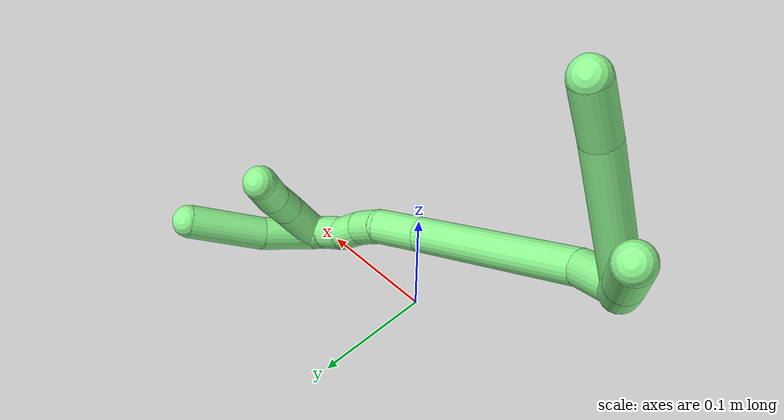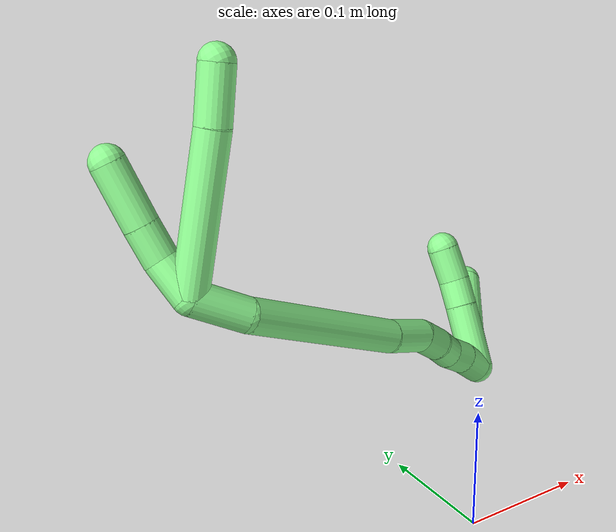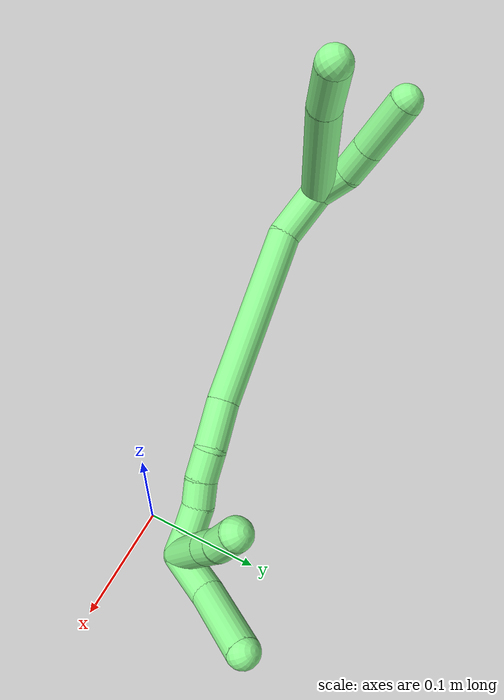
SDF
<sdf version="1.7">
 <world name="default">
  <model name="13">
   <static>0</static>
   <link name="13">
    <collision name="collision-cylinder-e_1_2_8">
     <pose>0.034438 -0.01445 0.039971 0.346882 0.680963 0.123981</pose>
     <geometry><cylinder><radius>0.0125</radius><length>0.109407</length></cylinder></geometry>
     <surface>
      <friction><ode><mu>1.16</mu><mu2>1.16</mu2><slip1>0</slip1><slip2>0</slip2></ode></friction>
      <contact><ode><kp>1e+06</kp><kd>1</kd><max_vel>0</max_vel><min_depth>0.001</min_depth></ode></contact>
     </surface>
    </collision>
    <visual name="visual-cylinder-e_1_2_8">
     <pose>0.034438 -0.01445 0.039971 0.346882 0.680963 0.123981</pose>
     <geometry><cylinder><radius>0.0125</radius><length>0.109407</length></cylinder></geometry>
     <material><ambient>0.564706 0.984314 0.572549 1</ambient></material>
    </visual>
    <collision name="collision-cylinder-e_2_8_6">
     <pose>0.08051 -0.033642 0.095884 0.28919 0.610364 0.091678</pose>
     <geometry><cylinder><radius>0.0125</radius><length>0.040593</length></cylinder></geometry>
     <surface>
      <friction><ode><mu>1.16</mu><mu2>1.16</mu2><slip1>0</slip1><slip2>0</slip2></ode></friction>
      <contact><ode><kp>1e+06</kp><kd>1</kd><max_vel>0</max_vel><min_depth>0.001</min_depth></ode></contact>
     </surface>
    </collision>
    <visual name="visual-cylinder-e_2_8_6">
     <pose>0.08051 -0.033642 0.095884 0.28919 0.610364 0.091678</pose>
     <geometry><cylinder><radius>0.0125</radius><length>0.040593</length></cylinder></geometry>
     <material><ambient>0.564706 0.984314 0.572549 1</ambient></material>
    </visual>
    <collision name="collision-cylinder-e_1_2_9">
     <pose>-0.001856 -0.000783 0.014849 0.052658 -0.124145 -0.003274</pose>
     <geometry><cylinder><radius>0.0125</radius><length>0.02997</length></cylinder></geometry>
     <surface>
      <friction><ode><mu>1.16</mu><mu2>1.16</mu2><slip1>0</slip1><slip2>0</slip2></ode></friction>
      <contact><ode><kp>1e+06</kp><kd>1</kd><max_vel>0</max_vel><min_depth>0.001</min_depth></ode></contact>
     </surface>
    </collision>
    <visual name="visual-cylinder-e_1_2_9">
     <pose>-0.001856 -0.000783 0.014849 0.052658 -0.124145 -0.003274</pose>
     <geometry><cylinder><radius>0.0125</radius><length>0.02997</length></cylinder></geometry>
     <material><ambient>0.564706 0.984314 0.572549 1</ambient></material>
    </visual>
    <collision name="collision-cylinder-e_2_9_10">
     <pose>-0.003227 -0.005278 0.042015 0.292758 0.037634 0.005549</pose>
     <geometry><cylinder><radius>0.0125</radius><length>0.025748</length></cylinder></geometry>
     <surface>
      <friction><ode><mu>1.16</mu><mu2>1.16</mu2><slip1>0</slip1><slip2>0</slip2></ode></friction>
      <contact><ode><kp>1e+06</kp><kd>1</kd><max_vel>0</max_vel><min_depth>0.001</min_depth></ode></contact>
     </surface>
    </collision>
    <visual name="visual-cylinder-e_2_9_10">
     <pose>-0.003227 -0.005278 0.042015 0.292758 0.037634 0.005549</pose>
     <geometry><cylinder><radius>0.0125</radius><length>0.025748</length></cylinder></geometry>
     <material><ambient>0.564706 0.984314 0.572549 1</ambient></material>
    </visual>
    <collision name="collision-cylinder-e_3_10_5">
     <pose>-0.001244 -0.015303 0.075502 0.289767 0.067711 0.009883</pose>
     <geometry><cylinder><radius>0.0125</radius><length>0.044282</length></cylinder></geometry>
     <surface>
      <friction><ode><mu>1.16</mu><mu2>1.16</mu2><slip1>0</slip1><slip2>0</slip2></ode></friction>
      <contact><ode><kp>1e+06</kp><kd>1</kd><max_vel>0</max_vel><min_depth>0.001</min_depth></ode></contact>
     </surface>
    </collision>
    <visual name="visual-cylinder-e_3_10_5">
     <pose>-0.001244 -0.015303 0.075502 0.289767 0.067711 0.009883</pose>
     <geometry><cylinder><radius>0.0125</radius><length>0.044282</length></cylinder></geometry>
     <material><ambient>0.564706 0.984314 0.572549 1</ambient></material>
    </visual>
    <collision name="collision-cylinder-e_1_2_11">
     <pose>0.012187 0.01073 -0.01322 -2.45978 0.621237 -1.471</pose>
     <geometry><cylinder><radius>0.0125</radius><length>0.041877</length></cylinder></geometry>
     <surface>
      <friction><ode><mu>1.16</mu><mu2>1.16</mu2><slip1>0</slip1><slip2>0</slip2></ode></friction>
      <contact><ode><kp>1e+06</kp><kd>1</kd><max_vel>0</max_vel><min_depth>0.001</min_depth></ode></contact>
     </surface>
    </collision>
    <visual name="visual-cylinder-e_1_2_11">
     <pose>0.012187 0.01073 -0.01322 -2.45978 0.621237 -1.471</pose>
     <geometry><cylinder><radius>0.0125</radius><length>0.041877</length></cylinder></geometry>
     <material><ambient>0.564706 0.984314 0.572549 1</ambient></material>
    </visual>
    <collision name="collision-cylinder-e_2_11_12">
     <pose>0.060273 0.072748 -0.054258 -2.06778 0.551565 -0.887603</pose>
     <geometry><cylinder><radius>0.0125</radius><length>0.137011</length></cylinder></geometry>
     <surface>
      <friction><ode><mu>1.16</mu><mu2>1.16</mu2><slip1>0</slip1><slip2>0</slip2></ode></friction>
      <contact><ode><kp>1e+06</kp><kd>1</kd><max_vel>0</max_vel><min_depth>0.001</min_depth></ode></contact>
     </surface>
    </collision>
    <visual name="visual-cylinder-e_2_11_12">
     <pose>0.060273 0.072748 -0.054258 -2.06778 0.551565 -0.887603</pose>
     <geometry><cylinder><radius>0.0125</radius><length>0.137011</length></cylinder></geometry>
     <material><ambient>0.564706 0.984314 0.572549 1</ambient></material>
    </visual>
    <collision name="collision-cylinder-e_3_12_13">
     <pose>0.106295 0.138804 -0.087291 -1.91023 0.573858 -0.790349</pose>
     <geometry><cylinder><radius>0.0125</radius><length>0.037297</length></cylinder></geometry>
     <surface>
      <friction><ode><mu>1.16</mu><mu2>1.16</mu2><slip1>0</slip1><slip2>0</slip2></ode></friction>
      <contact><ode><kp>1e+06</kp><kd>1</kd><max_vel>0</max_vel><min_depth>0.001</min_depth></ode></contact>
     </surface>
    </collision>
    <visual name="visual-cylinder-e_3_12_13">
     <pose>0.106295 0.138804 -0.087291 -1.91023 0.573858 -0.790349</pose>
     <geometry><cylinder><radius>0.0125</radius><length>0.037297</length></cylinder></geometry>
     <material><ambient>0.564706 0.984314 0.572549 1</ambient></material>
    </visual>
    <collision name="collision-cylinder-e_4_13_14">
     <pose>0.120389 0.16253 -0.098534 -2.16316 0.352344 -0.64538</pose>
     <geometry><cylinder><radius>0.0125</radius><length>0.023008</length></cylinder></geometry>
     <surface>
      <friction><ode><mu>1.16</mu><mu2>1.16</mu2><slip1>0</slip1><slip2>0</slip2></ode></friction>
      <contact><ode><kp>1e+06</kp><kd>1</kd><max_vel>0</max_vel><min_depth>0.001</min_depth></ode></contact>
     </surface>
    </collision>
    <visual name="visual-cylinder-e_4_13_14">
     <pose>0.120389 0.16253 -0.098534 -2.16316 0.352344 -0.64538</pose>
     <geometry><cylinder><radius>0.0125</radius><length>0.023008</length></cylinder></geometry>
     <material><ambient>0.564706 0.984314 0.572549 1</ambient></material>
    </visual>
    <collision name="collision-cylinder-e_5_14_15">
     <pose>0.126446 0.180365 -0.109243 -2.05602 0.20504 -0.337854</pose>
     <geometry><cylinder><radius>0.0125</radius><length>0.020501</length></cylinder></geometry>
     <surface>
      <friction><ode><mu>1.16</mu><mu2>1.16</mu2><slip1>0</slip1><slip2>0</slip2></ode></friction>
      <contact><ode><kp>1e+06</kp><kd>1</kd><max_vel>0</max_vel><min_depth>0.001</min_depth></ode></contact>
     </surface>
    </collision>
    <visual name="visual-cylinder-e_5_14_15">
     <pose>0.126446 0.180365 -0.109243 -2.05602 0.20504 -0.337854</pose>
     <geometry><cylinder><radius>0.0125</radius><length>0.020501</length></cylinder></geometry>
     <material><ambient>0.564706 0.984314 0.572549 1</ambient></material>
    </visual>
    <collision name="collision-cylinder-e_6_15_16">
     <pose>0.132786 0.196926 -0.118852 -2.14107 0.436046 -0.770103</pose>
     <geometry><cylinder><radius>0.0125</radius><length>0.020141</length></cylinder></geometry>
     <surface>
      <friction><ode><mu>1.16</mu><mu2>1.16</mu2><slip1>0</slip1><slip2>0</slip2></ode></friction>
      <contact><ode><kp>1e+06</kp><kd>1</kd><max_vel>0</max_vel><min_depth>0.001</min_depth></ode></contact>
     </surface>
    </collision>
    <visual name="visual-cylinder-e_6_15_16">
     <pose>0.132786 0.196926 -0.118852 -2.14107 0.436046 -0.770103</pose>
     <geometry><cylinder><radius>0.0125</radius><length>0.020141</length></cylinder></geometry>
     <material><ambient>0.564706 0.984314 0.572549 1</ambient></material>
    </visual>
    <collision name="collision-cylinder-e_7_16_1">
     <pose>0.140424 0.211791 -0.129994 -2.28421 0.34237 -0.723242</pose>
     <geometry><cylinder><radius>0.0125</radius><length>0.020164</length></cylinder></geometry>
     <surface>
      <friction><ode><mu>1.16</mu><mu2>1.16</mu2><slip1>0</slip1><slip2>0</slip2></ode></friction>
      <contact><ode><kp>1e+06</kp><kd>1</kd><max_vel>0</max_vel><min_depth>0.001</min_depth></ode></contact>
     </surface>
    </collision>
    <visual name="visual-cylinder-e_7_16_1">
     <pose>0.140424 0.211791 -0.129994 -2.28421 0.34237 -0.723242</pose>
     <geometry><cylinder><radius>0.0125</radius><length>0.020164</length></cylinder></geometry>
     <material><ambient>0.564706 0.984314 0.572549 1</ambient></material>
    </visual>
    <collision name="collision-cylinder-e_1_1_17">
     <pose>0.148799 0.234129 -0.122419 -0.832598 0.238834 -0.106004</pose>
     <geometry><cylinder><radius>0.0125</radius><length>0.042181</length></cylinder></geometry>
     <surface>
      <friction><ode><mu>1.16</mu><mu2>1.16</mu2><slip1>0</slip1><slip2>0</slip2></ode></friction>
      <contact><ode><kp>1e+06</kp><kd>1</kd><max_vel>0</max_vel><min_depth>0.001</min_depth></ode></contact>
     </surface>
    </collision>
    <visual name="visual-cylinder-e_1_1_17">
     <pose>0.148799 0.234129 -0.122419 -0.832598 0.238834 -0.106004</pose>
     <geometry><cylinder><radius>0.0125</radius><length>0.042181</length></cylinder></geometry>
     <material><ambient>0.564706 0.984314 0.572549 1</ambient></material>
    </visual>
    <collision name="collision-cylinder-e_2_17_4">
     <pose>0.164472 0.267146 -0.088563 -0.727297 0.378536 -0.145549</pose>
     <geometry><cylinder><radius>0.0125</radius><length>0.057819</length></cylinder></geometry>
     <surface>
      <friction><ode><mu>1.16</mu><mu2>1.16</mu2><slip1>0</slip1><slip2>0</slip2></ode></friction>
      <contact><ode><kp>1e+06</kp><kd>1</kd><max_vel>0</max_vel><min_depth>0.001</min_depth></ode></contact>
     </surface>
    </collision>
    <visual name="visual-cylinder-e_2_17_4">
     <pose>0.164472 0.267146 -0.088563 -0.727297 0.378536 -0.145549</pose>
     <geometry><cylinder><radius>0.0125</radius><length>0.057819</length></cylinder></geometry>
     <material><ambient>0.564706 0.984314 0.572549 1</ambient></material>
    </visual>
    <collision name="collision-cylinder-e_1_1_18">
     <pose>0.150748 0.217178 -0.111702 0.073035 0.27521 0.010118</pose>
     <geometry><cylinder><radius>0.0125</radius><length>0.051067</length></cylinder></geometry>
     <surface>
      <friction><ode><mu>1.16</mu><mu2>1.16</mu2><slip1>0</slip1><slip2>0</slip2></ode></friction>
      <contact><ode><kp>1e+06</kp><kd>1</kd><max_vel>0</max_vel><min_depth>0.001</min_depth></ode></contact>
     </surface>
    </collision>
    <visual name="visual-cylinder-e_1_1_18">
     <pose>0.150748 0.217178 -0.111702 0.073035 0.27521 0.010118</pose>
     <geometry><cylinder><radius>0.0125</radius><length>0.051067</length></cylinder></geometry>
     <material><ambient>0.564706 0.984314 0.572549 1</ambient></material>
    </visual>
    <collision name="collision-cylinder-e_2_18_19">
     <pose>0.16045 0.214922 -0.076805 0.044555 0.259717 0.00582</pose>
     <geometry><cylinder><radius>0.0125</radius><length>0.021523</length></cylinder></geometry>
     <surface>
      <friction><ode><mu>1.16</mu><mu2>1.16</mu2><slip1>0</slip1><slip2>0</slip2></ode></friction>
      <contact><ode><kp>1e+06</kp><kd>1</kd><max_vel>0</max_vel><min_depth>0.001</min_depth></ode></contact>
     </surface>
    </collision>
    <visual name="visual-cylinder-e_2_18_19">
     <pose>0.16045 0.214922 -0.076805 0.044555 0.259717 0.00582</pose>
     <geometry><cylinder><radius>0.0125</radius><length>0.021523</length></cylinder></geometry>
     <material><ambient>0.564706 0.984314 0.572549 1</ambient></material>
    </visual>
    <collision name="collision-cylinder-e_3_19_3">
     <pose>0.165785 0.211687 -0.053241 0.207373 0.188741 0.019698</pose>
     <geometry><cylinder><radius>0.0125</radius><length>0.02741</length></cylinder></geometry>
     <surface>
      <friction><ode><mu>1.16</mu><mu2>1.16</mu2><slip1>0</slip1><slip2>0</slip2></ode></friction>
      <contact><ode><kp>1e+06</kp><kd>1</kd><max_vel>0</max_vel><min_depth>0.001</min_depth></ode></contact>
     </surface>
    </collision>
    <visual name="visual-cylinder-e_3_19_3">
     <pose>0.165785 0.211687 -0.053241 0.207373 0.188741 0.019698</pose>
     <geometry><cylinder><radius>0.0125</radius><length>0.02741</length></cylinder></geometry>
     <material><ambient>0.564706 0.984314 0.572549 1</ambient></material>
    </visual>
    <collision name="collision-sphere-3">
     <pose>0.168357 0.208916 -0.040068 0 -0 0</pose>
     <geometry><sphere><radius>0.0125</radius></sphere></geometry>
     <surface>
      <friction><ode><mu>1.16</mu><mu2>1.16</mu2><slip1>0</slip1><slip2>0</slip2></ode></friction>
      <contact><ode><kp>1e+06</kp><kd>1</kd><max_vel>0</max_vel><min_depth>0.001</min_depth></ode></contact>
     </surface>
    </collision>
    <visual name="visual-sphere-3">
     <pose>0.168357 0.208916 -0.040068 0 -0 0</pose>
     <geometry><sphere><radius>0.0125</radius></sphere></geometry>
     <material><ambient>0.564706 0.984314 0.572549 1</ambient></material>
    </visual>
    <collision name="collision-sphere-19">
     <pose>0.163214 0.214459 -0.066415 0 -0 0</pose>
     <geometry><sphere><radius>0.0125</radius></sphere></geometry>
     <surface>
      <friction><ode><mu>1.16</mu><mu2>1.16</mu2><slip1>0</slip1><slip2>0</slip2></ode></friction>
      <contact><ode><kp>1e+06</kp><kd>1</kd><max_vel>0</max_vel><min_depth>0.001</min_depth></ode></contact>
     </surface>
    </collision>
    <visual name="visual-sphere-19">
     <pose>0.163214 0.214459 -0.066415 0 -0 0</pose>
     <geometry><sphere><radius>0.0125</radius></sphere></geometry>
     <material><ambient>0.564706 0.984314 0.572549 1</ambient></material>
    </visual>
    <collision name="collision-sphere-5">
     <pose>0.000254 -0.021614 0.096672 0 -0 0</pose>
     <geometry><sphere><radius>0.0125</radius></sphere></geometry>
     <surface>
      <friction><ode><mu>1.16</mu><mu2>1.16</mu2><slip1>0</slip1><slip2>0</slip2></ode></friction>
      <contact><ode><kp>1e+06</kp><kd>1</kd><max_vel>0</max_vel><min_depth>0.001</min_depth></ode></contact>
     </surface>
    </collision>
    <visual name="visual-sphere-5">
     <pose>0.000254 -0.021614 0.096672 0 -0 0</pose>
     <geometry><sphere><radius>0.0125</radius></sphere></geometry>
     <material><ambient>0.564706 0.984314 0.572549 1</ambient></material>
    </visual>
    <collision name="collision-sphere-10">
     <pose>-0.002742 -0.008991 0.054333 0 -0 0</pose>
     <geometry><sphere><radius>0.0125</radius></sphere></geometry>
     <surface>
      <friction><ode><mu>1.16</mu><mu2>1.16</mu2><slip1>0</slip1><slip2>0</slip2></ode></friction>
      <contact><ode><kp>1e+06</kp><kd>1</kd><max_vel>0</max_vel><min_depth>0.001</min_depth></ode></contact>
     </surface>
    </collision>
    <visual name="visual-sphere-10">
     <pose>-0.002742 -0.008991 0.054333 0 -0 0</pose>
     <geometry><sphere><radius>0.0125</radius></sphere></geometry>
     <material><ambient>0.564706 0.984314 0.572549 1</ambient></material>
    </visual>
    <collision name="collision-sphere-6">
     <pose>0.092143 -0.038385 0.111825 0 -0 0</pose>
     <geometry><sphere><radius>0.0125</radius></sphere></geometry>
     <surface>
      <friction><ode><mu>1.16</mu><mu2>1.16</mu2><slip1>0</slip1><slip2>0</slip2></ode></friction>
      <contact><ode><kp>1e+06</kp><kd>1</kd><max_vel>0</max_vel><min_depth>0.001</min_depth></ode></contact>
     </surface>
    </collision>
    <visual name="visual-sphere-6">
     <pose>0.092143 -0.038385 0.111825 0 -0 0</pose>
     <geometry><sphere><radius>0.0125</radius></sphere></geometry>
     <material><ambient>0.564706 0.984314 0.572549 1</ambient></material>
    </visual>
    <collision name="collision-sphere-9">
     <pose>-0.003711 -0.001565 0.029698 0 -0 0</pose>
     <geometry><sphere><radius>0.0125</radius></sphere></geometry>
     <surface>
      <friction><ode><mu>1.16</mu><mu2>1.16</mu2><slip1>0</slip1><slip2>0</slip2></ode></friction>
      <contact><ode><kp>1e+06</kp><kd>1</kd><max_vel>0</max_vel><min_depth>0.001</min_depth></ode></contact>
     </surface>
    </collision>
    <visual name="visual-sphere-9">
     <pose>-0.003711 -0.001565 0.029698 0 -0 0</pose>
     <geometry><sphere><radius>0.0125</radius></sphere></geometry>
     <material><ambient>0.564706 0.984314 0.572549 1</ambient></material>
    </visual>
    <collision name="collision-sphere-2">
     <geometry><sphere><radius>0.0125</radius></sphere></geometry>
     <surface>
      <friction><ode><mu>1.16</mu><mu2>1.16</mu2><slip1>0</slip1><slip2>0</slip2></ode></friction>
      <contact><ode><kp>1e+06</kp><kd>1</kd><max_vel>0</max_vel><min_depth>0.001</min_depth></ode></contact>
     </surface>
    </collision>
    <visual name="visual-sphere-2">
     <geometry><sphere><radius>0.0125</radius></sphere></geometry>
     <material><ambient>0.564706 0.984314 0.572549 1</ambient></material>
    </visual>
    <collision name="collision-sphere-8">
     <pose>0.068876 -0.028899 0.079943 0 -0 0</pose>
     <geometry><sphere><radius>0.0125</radius></sphere></geometry>
     <surface>
      <friction><ode><mu>1.16</mu><mu2>1.16</mu2><slip1>0</slip1><slip2>0</slip2></ode></friction>
      <contact><ode><kp>1e+06</kp><kd>1</kd><max_vel>0</max_vel><min_depth>0.001</min_depth></ode></contact>
     </surface>
    </collision>
    <visual name="visual-sphere-8">
     <pose>0.068876 -0.028899 0.079943 0 -0 0</pose>
     <geometry><sphere><radius>0.0125</radius></sphere></geometry>
     <material><ambient>0.564706 0.984314 0.572549 1</ambient></material>
    </visual>
    <collision name="collision-sphere-11">
     <pose>0.024374 0.02146 -0.02644 0 -0 0</pose>
     <geometry><sphere><radius>0.0125</radius></sphere></geometry>
     <surface>
      <friction><ode><mu>1.16</mu><mu2>1.16</mu2><slip1>0</slip1><slip2>0</slip2></ode></friction>
      <contact><ode><kp>1e+06</kp><kd>1</kd><max_vel>0</max_vel><min_depth>0.001</min_depth></ode></contact>
     </surface>
    </collision>
    <visual name="visual-sphere-11">
     <pose>0.024374 0.02146 -0.02644 0 -0 0</pose>
     <geometry><sphere><radius>0.0125</radius></sphere></geometry>
     <material><ambient>0.564706 0.984314 0.572549 1</ambient></material>
    </visual>
    <collision name="collision-sphere-12">
     <pose>0.096171 0.124037 -0.082076 0 -0 0</pose>
     <geometry><sphere><radius>0.0125</radius></sphere></geometry>
     <surface>
      <friction><ode><mu>1.16</mu><mu2>1.16</mu2><slip1>0</slip1><slip2>0</slip2></ode></friction>
      <contact><ode><kp>1e+06</kp><kd>1</kd><max_vel>0</max_vel><min_depth>0.001</min_depth></ode></contact>
     </surface>
    </collision>
    <visual name="visual-sphere-12">
     <pose>0.096171 0.124037 -0.082076 0 -0 0</pose>
     <geometry><sphere><radius>0.0125</radius></sphere></geometry>
     <material><ambient>0.564706 0.984314 0.572549 1</ambient></material>
    </visual>
    <collision name="collision-sphere-13">
     <pose>0.116419 0.153572 -0.092505 0 -0 0</pose>
     <geometry><sphere><radius>0.0125</radius></sphere></geometry>
     <surface>
      <friction><ode><mu>1.16</mu><mu2>1.16</mu2><slip1>0</slip1><slip2>0</slip2></ode></friction>
      <contact><ode><kp>1e+06</kp><kd>1</kd><max_vel>0</max_vel><min_depth>0.001</min_depth></ode></contact>
     </surface>
    </collision>
    <visual name="visual-sphere-13">
     <pose>0.116419 0.153572 -0.092505 0 -0 0</pose>
     <geometry><sphere><radius>0.0125</radius></sphere></geometry>
     <material><ambient>0.564706 0.984314 0.572549 1</ambient></material>
    </visual>
    <collision name="collision-sphere-14">
     <pose>0.124359 0.171487 -0.104562 0 -0 0</pose>
     <geometry><sphere><radius>0.0125</radius></sphere></geometry>
     <surface>
      <friction><ode><mu>1.16</mu><mu2>1.16</mu2><slip1>0</slip1><slip2>0</slip2></ode></friction>
      <contact><ode><kp>1e+06</kp><kd>1</kd><max_vel>0</max_vel><min_depth>0.001</min_depth></ode></contact>
     </surface>
    </collision>
    <visual name="visual-sphere-14">
     <pose>0.124359 0.171487 -0.104562 0 -0 0</pose>
     <geometry><sphere><radius>0.0125</radius></sphere></geometry>
     <material><ambient>0.564706 0.984314 0.572549 1</ambient></material>
    </visual>
    <collision name="collision-sphere-15">
     <pose>0.128533 0.189242 -0.113924 0 -0 0</pose>
     <geometry><sphere><radius>0.0125</radius></sphere></geometry>
     <surface>
      <friction><ode><mu>1.16</mu><mu2>1.16</mu2><slip1>0</slip1><slip2>0</slip2></ode></friction>
      <contact><ode><kp>1e+06</kp><kd>1</kd><max_vel>0</max_vel><min_depth>0.001</min_depth></ode></contact>
     </surface>
    </collision>
    <visual name="visual-sphere-15">
     <pose>0.128533 0.189242 -0.113924 0 -0 0</pose>
     <geometry><sphere><radius>0.0125</radius></sphere></geometry>
     <material><ambient>0.564706 0.984314 0.572549 1</ambient></material>
    </visual>
    <collision name="collision-sphere-16">
     <pose>0.13704 0.20461 -0.12378 0 -0 0</pose>
     <geometry><sphere><radius>0.0125</radius></sphere></geometry>
     <surface>
      <friction><ode><mu>1.16</mu><mu2>1.16</mu2><slip1>0</slip1><slip2>0</slip2></ode></friction>
      <contact><ode><kp>1e+06</kp><kd>1</kd><max_vel>0</max_vel><min_depth>0.001</min_depth></ode></contact>
     </surface>
    </collision>
    <visual name="visual-sphere-16">
     <pose>0.13704 0.20461 -0.12378 0 -0 0</pose>
     <geometry><sphere><radius>0.0125</radius></sphere></geometry>
     <material><ambient>0.564706 0.984314 0.572549 1</ambient></material>
    </visual>
    <collision name="collision-sphere-1">
     <pose>0.143809 0.218971 -0.136209 0 -0 0</pose>
     <geometry><sphere><radius>0.0125</radius></sphere></geometry>
     <surface>
      <friction><ode><mu>1.16</mu><mu2>1.16</mu2><slip1>0</slip1><slip2>0</slip2></ode></friction>
      <contact><ode><kp>1e+06</kp><kd>1</kd><max_vel>0</max_vel><min_depth>0.001</min_depth></ode></contact>
     </surface>
    </collision>
    <visual name="visual-sphere-1">
     <pose>0.143809 0.218971 -0.136209 0 -0 0</pose>
     <geometry><sphere><radius>0.0125</radius></sphere></geometry>
     <material><ambient>0.564706 0.984314 0.572549 1</ambient></material>
    </visual>
    <collision name="collision-sphere-18">
     <pose>0.157687 0.215385 -0.087195 0 -0 0</pose>
     <geometry><sphere><radius>0.0125</radius></sphere></geometry>
     <surface>
      <friction><ode><mu>1.16</mu><mu2>1.16</mu2><slip1>0</slip1><slip2>0</slip2></ode></friction>
      <contact><ode><kp>1e+06</kp><kd>1</kd><max_vel>0</max_vel><min_depth>0.001</min_depth></ode></contact>
     </surface>
    </collision>
    <visual name="visual-sphere-18">
     <pose>0.157687 0.215385 -0.087195 0 -0 0</pose>
     <geometry><sphere><radius>0.0125</radius></sphere></geometry>
     <material><ambient>0.564706 0.984314 0.572549 1</ambient></material>
    </visual>
    <collision name="collision-sphere-17">
     <pose>0.153788 0.249286 -0.108629 0 -0 0</pose>
     <geometry><sphere><radius>0.0125</radius></sphere></geometry>
     <surface>
      <friction><ode><mu>1.16</mu><mu2>1.16</mu2><slip1>0</slip1><slip2>0</slip2></ode></friction>
      <contact><ode><kp>1e+06</kp><kd>1</kd><max_vel>0</max_vel><min_depth>0.001</min_depth></ode></contact>
     </surface>
    </collision>
    <visual name="visual-sphere-17">
     <pose>0.153788 0.249286 -0.108629 0 -0 0</pose>
     <geometry><sphere><radius>0.0125</radius></sphere></geometry>
     <material><ambient>0.564706 0.984314 0.572549 1</ambient></material>
    </visual>
    <collision name="collision-sphere-4">
     <pose>0.175156 0.285006 -0.068497 0 -0 0</pose>
     <geometry><sphere><radius>0.0125</radius></sphere></geometry>
     <surface>
      <friction><ode><mu>1.16</mu><mu2>1.16</mu2><slip1>0</slip1><slip2>0</slip2></ode></friction>
      <contact><ode><kp>1e+06</kp><kd>1</kd><max_vel>0</max_vel><min_depth>0.001</min_depth></ode></contact>
     </surface>
    </collision>
    <visual name="visual-sphere-4">
     <pose>0.175156 0.285006 -0.068497 0 -0 0</pose>
     <geometry><sphere><radius>0.0125</radius></sphere></geometry>
     <material><ambient>0.564706 0.984314 0.572549 1</ambient></material>
    </visual>
    <inertial>
     <pose>0.082567 0.0991 -0.035641 0 -0 0</pose>
     <mass>0.75</mass>
     <inertia>
      <ixx>0.000149</ixx>
      <ixy>0</ixy>
      <ixz>0</ixz>
      <iyy>4.8e-05</iyy>
      <iyz>0</iyz>
      <izz>-0.000354</izz>
     </inertia>
    </inertial>
   </link>
   <pose>-0.208301 0.043771 0.23569 -0.571737 -0.478345 -0.361203</pose>
  </model>
 </world>
</sdf>
